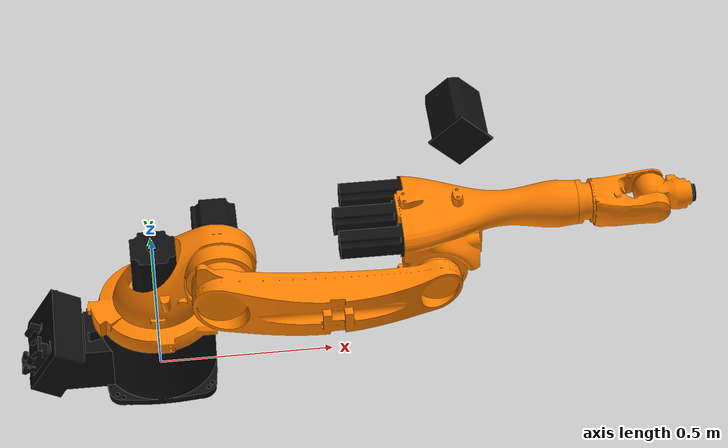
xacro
<?xml version="1.0"?>
<robot name="kuka_kr5arc" xmlns:xacro="http://www.ros.org/wiki/xacro">

    <xacro:include filename="$(find kuka_kr5_support)/urdf/kr5arc_macro.xacro" />
    <xacro:include filename="$(find kuka_resources)/urdf/kuka_pedestal_macro.xacro" />

    <xacro:property name="kr5_prefix" value=""/>

    <xacro:kuka_kr5arc prefix="${kr5_prefix}"/>
</robot>

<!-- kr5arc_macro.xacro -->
<robot xmlns:xacro="http://www.ros.org/wiki/xacro">

    <xacro:include filename="$(find kuka_resources)/urdf/common_materials.xacro"/>

    <xacro:property name="DEG2RAD" value="0.017453292519943295"/>
    <xacro:property name="PI" value="3.141592653589793"/>

    <xacro:macro name="kuka_kr5arc" params="prefix">

        <!-- LINKS -->
        <!-- base link -->
        <link name="${prefix}base_link">
            <visual>
                <origin xyz="0 0 0" rpy="0 0 0"/>
                <geometry>
                    <mesh filename="package://kuka_kr5_support/meshes/kr5arc/visual/base_link.stl" scale="0.001 0.001 0.001" />
                </geometry>
                <xacro:material_kuka_black/>
            </visual>
            <collision>
                <origin xyz="0 0 0" rpy="0 0 0"/>
                <geometry>
                    <mesh filename="package://kuka_kr5_support/meshes/kr5arc/collision/base_link.stl" scale="0.001 0.001 0.001" />
                </geometry>
            </collision>
        </link>
        <!-- link 1 -->
        <link name="${prefix}link_1">
            <!-- main link body -->
            <visual>
                <origin xyz="0 0 -0.2245" rpy="0 0 0"/>
                <geometry>
                    <mesh filename="package://kuka_kr5_support/meshes/kr5arc/visual/link_1.stl" scale="0.001 0.001 0.001" />
                </geometry>
                <xacro:material_kuka_orange/>
            </visual>
            <collision>
                <origin xyz="0 0 -0.2245" rpy="0 0 0"/>
                <geometry>
                    <mesh filename="package://kuka_kr5_support/meshes/kr5arc/collision/link_1.stl" scale="0.001 0.001 0.001" />
                </geometry>
            </collision>
        </link>
        <!-- link 2 -->
        <link name="${prefix}link_2">
            <visual>
                <origin xyz="-0.18 0 -0.4" rpy="0 0 0"/>
                <geometry>
                    <mesh filename="package://kuka_kr5_support/meshes/kr5arc/visual/link_2.stl" scale="0.001 0.001 0.001" />
                </geometry>
                <xacro:material_kuka_orange/>
            </visual>
            <collision>
                <origin xyz="-0.18 0 -0.4" rpy="0 0 0"/>
                <geometry>
                    <mesh filename="package://kuka_kr5_support/meshes/kr5arc/collision/link_2.stl" scale="0.001 0.001 0.001" />
                </geometry>
            </collision>
        </link>
        <!-- link 3 -->
        <link name="${prefix}link_3">
            <visual>
                <origin xyz="-0.18 0 -1.0" rpy="0 0 0"/>
                <geometry>
                    <mesh filename="package://kuka_kr5_support/meshes/kr5arc/visual/link_3.stl" scale="0.001 0.001 0.001" />
                </geometry>
                <xacro:material_kuka_orange/>
            </visual>
            <collision>
                <origin xyz="-0.18 0 -1.0" rpy="0 0 0"/>
                <geometry>
                    <mesh filename="package://kuka_kr5_support/meshes/kr5arc/collision/link_3.stl" scale="0.001 0.001 0.001" />
                </geometry>
            </collision>
        </link>
        <!-- link 4 -->
        <link name="${prefix}link_4">
            <visual>
                <origin xyz="-0.5835 0 -1.120" rpy="0 0 0"/>
                <geometry>
                    <mesh filename="package://kuka_kr5_support/meshes/kr5arc/visual/link_4.stl" scale="0.001 0.001 0.001" />
                </geometry>
                <xacro:material_kuka_orange/>
            </visual>
            <collision>
                <origin xyz="-0.5835 0 -1.120" rpy="0 0 0"/>
                <geometry>
                    <mesh filename="package://kuka_kr5_support/meshes/kr5arc/collision/link_4.stl" scale="0.001 0.001 0.001" />
                </geometry>
            </collision>
        </link>
        <!-- link 5 -->
        <link name="${prefix}link_5">
            <visual>
                <origin xyz="-0.8 0 -1.120" rpy="0 0 0"/>
                <geometry>
                    <mesh filename="package://kuka_kr5_support/meshes/kr5arc/visual/link_5.stl" scale="0.001 0.001 0.001" />
                </geometry>
                <xacro:material_kuka_orange/>
            </visual>
            <collision>
                <origin xyz="-0.8 0 -1.120" rpy="0 0 0"/>
                <geometry>
                    <mesh filename="package://kuka_kr5_support/meshes/kr5arc/collision/link_5.stl" scale="0.001 0.001 0.001" />
                </geometry>
            </collision>
        </link>
        <!-- link 6 -->
        <link name="${prefix}link_6">
            <visual>
                <origin xyz="-0.9088 0 -1.120" rpy="0 0 0"/>
                <geometry>
                    <mesh filename="package://kuka_kr5_support/meshes/kr5arc/visual/link_6.stl" scale="0.001 0.001 0.001" />
                </geometry>
                <xacro:material_kuka_black/>
            </visual>
            <collision>
                <origin xyz="-0.9088 0 -1.120" rpy="0 0 0"/>
                <geometry>
                    <mesh filename="package://kuka_kr5_support/meshes/kr5arc/collision/link_6.stl" scale="0.001 0.001 0.001" />
                </geometry>
            </collision>
        </link>
        <!-- tool 0 -->
        <link name="${prefix}tool0"/>
        <!-- END LINKS -->

        <!-- JOINTS -->
        <!-- joint 1 (A1) -->
        <joint name="${prefix}joint_1" type="revolute">
            <origin xyz="0 0 0.2245" rpy="0 0 0"/>
            <parent link="${prefix}base_link"/>
            <child link="${prefix}link_1"/>
            <axis xyz="0 0 -1"/>
            <limit effort="0" lower="${-DEG2RAD * 155}" upper="${DEG2RAD * 155}" velocity="${DEG2RAD * 154}"/>
        </joint>

        <!-- joint 2 (A2) -->
        <joint name="${prefix}joint_2" type="revolute">
            <origin xyz="0.18 0 ${0.4-0.2245}" rpy="0 ${PI/2} 0"/>
            <parent link="${prefix}link_1"/>
            <child link="${prefix}link_2"/>
            <axis xyz="0 1 0"/>
            <limit effort="0" lower="${-DEG2RAD * 180}" upper="${DEG2RAD * 65}" velocity="${DEG2RAD * 154}"/>
        </joint>

        <!-- joint 3 (A3) -->
        <joint name="${prefix}joint_3" type="revolute">
            <origin xyz="0 0 0.6" rpy="0 ${-PI/2} 0"/>
            <parent link="${prefix}link_2"/>
            <child link="${prefix}link_3"/>
            <axis xyz="0 1 0"/>
            <limit effort="0" lower="${-DEG2RAD * 15}" upper="${DEG2RAD * 158}" velocity="${DEG2RAD * 228}"/>
        </joint>

        <!-- joint 4 (A4) -->
        <joint name="${prefix}joint_4" type="revolute">
            <origin xyz="${0.5835-0.18} 0 0.12" rpy="0 0 0"/>
            <parent link="${prefix}link_3"/>
            <child link="${prefix}link_4"/>
            <axis xyz="-1 0 0"/>
            <limit effort="0" lower="${-DEG2RAD * 350}" upper="${DEG2RAD * 350}" velocity="${DEG2RAD * 343}"/>
        </joint>

        <!-- joint 5 (A5) -->
        <joint name="${prefix}joint_5" type="revolute">
            <origin xyz="${0.80-0.5835} 0 0" rpy="0 0 0"/>
            <parent link="${prefix}link_4"/>
            <child link="${prefix}link_5"/>
            <axis xyz="0 1 0"/>
            <limit effort="0" lower="${-DEG2RAD * 130}" upper="${DEG2RAD * 130}" velocity="${DEG2RAD * 384}"/>
        </joint>

        <!-- joint 6 (A6) -->
        <joint name="${prefix}joint_6" type="revolute">
            <origin xyz="${0.915-0.80} 0 0" rpy="0 0 0"/>
            <parent link="${prefix}link_5"/>
            <child link="${prefix}link_6"/>
            <axis xyz="-1 0 0"/>
            <limit effort="0" lower="${-DEG2RAD * 350}" upper="${DEG2RAD * 350}" velocity="${DEG2RAD * 721}"/>
        </joint>

        <joint name="${prefix}joint_6-tool0" type="fixed">
            <parent link="${prefix}link_6"/>
            <child link="${prefix}tool0"/>
            <origin xyz="0 0 0" rpy="0 ${PI/2} 0"/>
        </joint>
        <!-- END JOINTS -->

        <!-- MOTORS -->
        <!-- A1 motor -->
        <link name="${prefix}link_1_motor1">
            <!-- motor 1 -->
            <visual>
                <origin xyz="0 0 -0.2245" rpy="0 0 0"/>
                <geometry>
                    <mesh filename="package://kuka_kr5_support/meshes/kr5arc/visual/link_1_motor1.stl" scale="0.001 0.001 0.001" />
                </geometry>
                <xacro:material_kuka_black/>
            </visual>
            <collision>
                <origin xyz="0 0 -0.2245" rpy="0 0 0"/>
                <geometry>
                    <mesh filename="package://kuka_kr5_support/meshes/kr5arc/collision/link_1_motor1.stl" scale="0.001 0.001 0.001" />
                </geometry>
            </collision>
        </link>
        <!-- A2 motor -->
        <link name="${prefix}link_1_motor2">
            <!-- motor 1 -->
            <visual>
                <origin xyz="0 0 -0.2245" rpy="0 0 0"/>
                <geometry>
                    <mesh filename="package://kuka_kr5_support/meshes/kr5arc/visual/link_1_motor2.stl" scale="0.001 0.001 0.001" />
                </geometry>
                <xacro:material_kuka_black/>
            </visual>
            <collision>
                <origin xyz="0 0 -0.2245" rpy="0 0 0"/>
                <geometry>
                    <mesh filename="package://kuka_kr5_support/meshes/kr5arc/collision/link_1_motor2.stl" scale="0.001 0.001 0.001" />
                </geometry>
            </collision>
        </link>
        <!-- A4 motor -->
        <link name="${prefix}link_3_motor1">
            <visual>
                <origin xyz="-0.18 0 -1.0" rpy="0 0 0"/>
                <geometry>
                    <mesh filename="package://kuka_kr5_support/meshes/kr5arc/visual/link_3_motor1.stl" scale="0.001 0.001 0.001" />
                </geometry>
                <xacro:material_kuka_black/>
            </visual>
            <collision>
                <origin xyz="-0.18 0 -1.0" rpy="0 0 0"/>
                <geometry>
                    <mesh filename="package://kuka_kr5_support/meshes/kr5arc/collision/link_3_motor1.stl" scale="0.001 0.001 0.001" />
                </geometry>
            </collision>
        </link>
        <!-- A5 motor -->
        <link name="${prefix}link_3_motor2">
            <visual>
                <origin xyz="-0.18 0 -1.0" rpy="0 0 0"/>
                <geometry>
                    <mesh filename="package://kuka_kr5_support/meshes/kr5arc/visual/link_3_motor2.stl" scale="0.001 0.001 0.001" />
                </geometry>
                <xacro:material_kuka_black/>
            </visual>
            <collision>
                <origin xyz="-0.18 0 -1.0" rpy="0 0 0"/>
                <geometry>
                    <mesh filename="package://kuka_kr5_support/meshes/kr5arc/collision/link_3_motor2.stl" scale="0.001 0.001 0.001" />
                </geometry>
            </collision>
        </link>
        <!-- A6 motor -->
        <link name="${prefix}link_3_motor3">
            <visual>
                <origin xyz="-0.18 0 -1.0" rpy="0 0 0"/>
                <geometry>
                    <mesh filename="package://kuka_kr5_support/meshes/kr5arc/visual/link_3_motor3.stl" scale="0.001 0.001 0.001" />
                </geometry>
                <xacro:material_kuka_black/>
            </visual>
            <collision>
                <origin xyz="-0.18 0 -1.0" rpy="0 0 0"/>
                <geometry>
                    <mesh filename="package://kuka_kr5_support/meshes/kr5arc/collision/link_3_motor3.stl" scale="0.001 0.001 0.001" />
                </geometry>
            </collision>
        </link>
        <!-- A3 motor -->
        <link name="${prefix}link_3_motor4">
            <visual>
                <origin xyz="-0.18 0 -1.0" rpy="0 0 0"/>
                <geometry>
                    <mesh filename="package://kuka_kr5_support/meshes/kr5arc/visual/link_3_motor4.stl" scale="0.001 0.001 0.001" />
                </geometry>
                <xacro:material_kuka_black/>
            </visual>
            <collision>
                <origin xyz="-0.18 0 -0.4" rpy="0 0 0"/>
                <geometry>
                    <mesh filename="package://kuka_kr5_support/meshes/kr5arc/collision/link_3_motor4.stl" scale="0.001 0.001 0.001" />
                </geometry>
            </collision>
        </link>

        <!-- dummy motor joint -->
        <joint name="${prefix}joint_1_motor1" type="fixed">
            <origin xyz="0 0 0" rpy="0 0 0"/>
            <parent link="${prefix}link_1"/>
            <child link="${prefix}link_1_motor1"/>
        </joint>
        <!-- dummy motor joint -->
        <joint name="${prefix}joint_1_motor2" type="fixed">
            <origin xyz="0 0 0" rpy="0 0 0"/>
            <parent link="${prefix}link_1"/>
            <child link="${prefix}link_1_motor2"/>
        </joint>
        <!-- dummy  motor joint -->
        <joint name="${prefix}joint_3_motor1" type="fixed">
            <origin xyz="0 0 0" rpy="0 0 0"/>
            <parent link="${prefix}link_3"/>
            <child link="${prefix}link_3_motor1"/>
        </joint>
        <!-- dummy  motor joint -->
        <joint name="${prefix}joint_3_motor2" type="fixed">
            <origin xyz="0 0 0" rpy="0 0 0"/>
            <parent link="${prefix}link_3"/>
            <child link="${prefix}link_3_motor2"/>
        </joint>
        <!-- dummy  motor joint -->
        <joint name="${prefix}joint_3_motor3" type="fixed">
            <origin xyz="0 0 0" rpy="0 0 0"/>
            <parent link="${prefix}link_3"/>
            <child link="${prefix}link_3_motor3"/>
        </joint>
        <!-- dummy motor joint -->
        <joint name="${prefix}joint_3_motor4" type="fixed">
            <origin xyz="0 0 0" rpy="0 0 0"/>
            <parent link="${prefix}link_3"/>
            <child link="${prefix}link_3_motor4"/>
        </joint>
        <!-- END MOTORS -->

    </xacro:macro>
</robot>

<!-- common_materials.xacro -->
<robot xmlns:xacro="http://ros.org/wiki/xacro">
  <xacro:include filename="$(find kuka_resources)/urdf/common_colours.xacro"/>

    <material name="kuka_orange">
      <color rgba="${color_kuka_orange}"/>
    </material>
    <material name="kuka_black">
      <color rgba="${color_kuka_black}"/>
    </material>

    <xacro:macro name="material_kuka_orange">
        <material name="">
            <color rgba="${color_kuka_orange}"/>
        </material>
    </xacro:macro>

    <xacro:macro name="material_kuka_black">
        <material name="">
            <color rgba="${color_kuka_black}"/>
        </material>
    </xacro:macro>

    <xacro:macro name="material_kuka" params="color">
      <xacro:if color="black">
        <xacro:material_kuka_black/>
      </xacro:if>
      <xacro:if color="orange">
        <xacro:material_kuka_orange/>
      </xacro:if>
    </xacro:macro>

</robot>

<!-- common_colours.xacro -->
<!-- This file contains the URDF parameters for the common kuka colors -->
<robot xmlns:xacro="http://ros.org/wiki/xacro">
    <xacro:property name="color_kuka_orange" value="1.0 0.5 0.0 1.0"/>
    <xacro:property name="color_kuka_black" value="0.05 0.05 0.05 1.0"/>
</robot>
